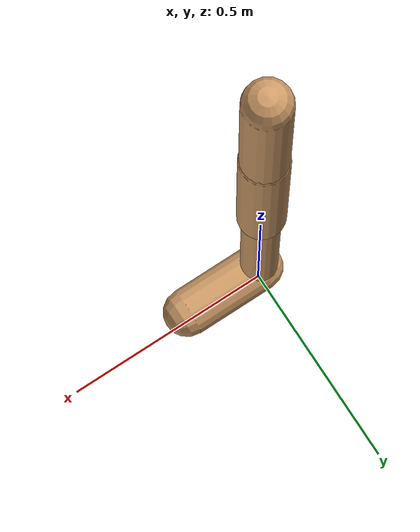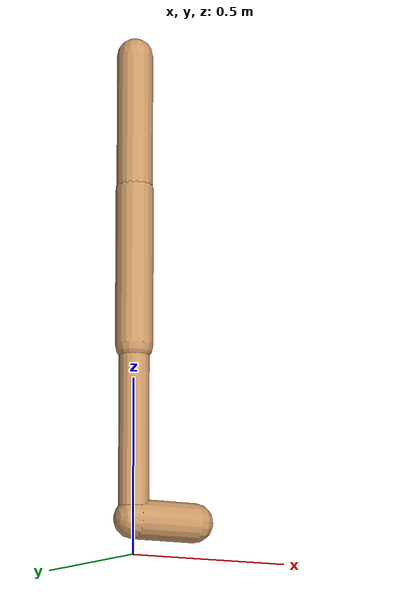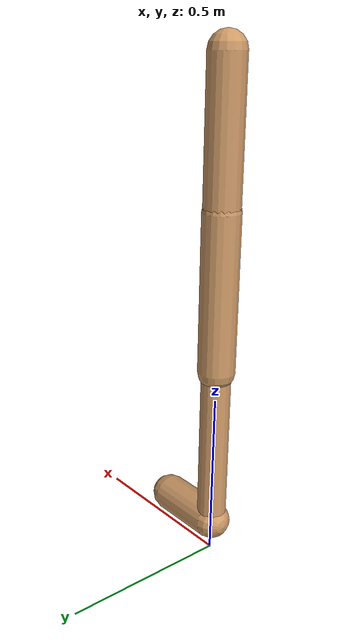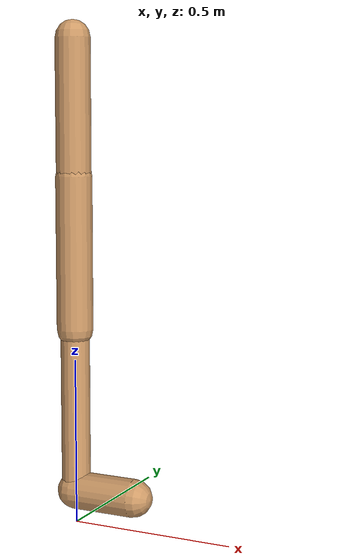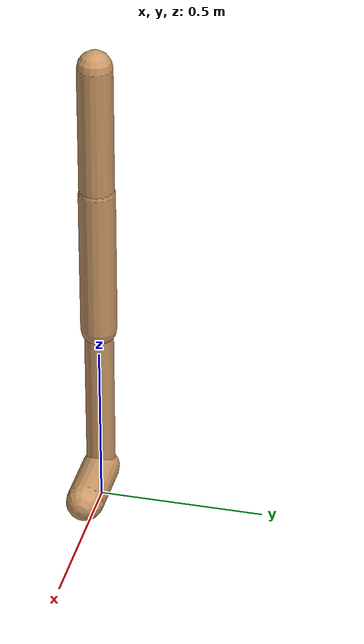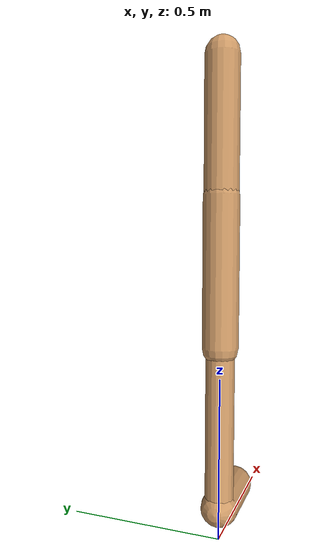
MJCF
<mujoco model="walker2d">
  <compiler angle="degree" coordinate="global" inertiafromgeom="true" />
  <default>
    <joint armature="0.01" damping=".1" limited="true" />
    <geom conaffinity="0" condim="3" contype="1" density="1000" friction="0.8 .1 .1" rgba="0.8 0.6 .4 1" />
  </default>
  <option integrator="RK4" timestep="0.002" />
  <worldbody>

    <body name="torso" pos="0 0 0.010774866052814242">
      <joint armature="0" axis="1 0 0" damping="0" limited="false" name="ignorex" pos="0 0 0" stiffness="0" type="slide" />
      <joint armature="0" axis="0 0 1" damping="0" limited="false" name="ignorez" pos="0 0 0" ref="1.25" stiffness="0" type="slide" />
      <joint armature="0" axis="0 1 0" damping="0" limited="false" name="ignorey" pos="0 0 0" stiffness="0" type="hinge" />
      <geom fromto="0 0 1.45 0 0 1.05" name="torso_geom" size="0.05213160114583485" type="capsule" />
      <body name="thigh">
        <joint axis="0 -1 0" name="thigh_joint" pos="0 0 1.05" range="-150 0" type="hinge" />
        <geom fromto="0.0 0.0 1.05 0.0 0.0 0.5948961160802458" name="thigh_geom" size="0.05441068076096072" type="capsule" />
        <body name="leg" pos="0.0 0.0 -0.0051038839197541375">
          <joint axis="0 -1 0" name="leg_joint" pos="0 0 0.6" range="-150 0" type="hinge" />
          <geom fromto="0.0 0.0 0.6 0.0 0.0 0.09432901786693988" name="leg_geom" size="0.04352854460876857" type="capsule" />
          <body name="foot" pos="0.0 0.0 -0.0056709821330601234">
            <joint axis="0 -1 0" name="foot_joint" pos="0 0 0.1" range="-45 45" type="hinge" />
            <geom fromto="0.0 0.0 0.1 0.19424775572417335 0.0 0.1" name="foot_geom" size="0.05673922653289663" type="capsule" />
          </body>
        </body>
      </body>

      <body name="thigh_left">
        <joint axis="0 -1 0" name="thigh_left_joint" pos="0 0 1.05" range="-150 0" type="hinge" />
        <geom fromto="0.0 0.0 1.05 0.0 0.0 0.5948961160802458" name="thigh_left_geom" rgba=".7 .3 .6 1" size="0.05441068076096072" type="capsule" />
        <body name="leg_left" pos="0.0 0.0 -0.0051038839197541375">
          <joint axis="0 -1 0" name="leg_left_joint" pos="0 0 0.6" range="-150 0" type="hinge" />
          <geom fromto="0.0 0.0 0.6 0.0 0.0 0.09432901786693988" name="leg_left_geom" rgba=".7 .3 .6 1" size="0.04352854460876857" type="capsule" />
          <body name="foot_left" pos="0.0 0.0 -0.0056709821330601234">
            <joint axis="0 -1 0" name="foot_left_joint" pos="0 0 0.1" range="-45 45" type="hinge" />
            <geom fromto="0.0 0.0 0.1 0.19424775572417335 0.0 0.1" name="foot_left_geom" rgba=".7 .3 .6 1" size="0.05673922653289663" type="capsule" />
          </body>
        </body>
      </body>
    </body>
  </worldbody>
  <actuator>

    <motor ctrllimited="true" ctrlrange="-1.0 1.0" gear="100" joint="thigh_joint" />
    <motor ctrllimited="true" ctrlrange="-1.0 1.0" gear="100" joint="leg_joint" />
    <motor ctrllimited="true" ctrlrange="-1.0 1.0" gear="100" joint="foot_joint" />
    <motor ctrllimited="true" ctrlrange="-1.0 1.0" gear="100" joint="thigh_left_joint" />
    <motor ctrllimited="true" ctrlrange="-1.0 1.0" gear="100" joint="leg_left_joint" />
    <motor ctrllimited="true" ctrlrange="-1.0 1.0" gear="100" joint="foot_left_joint" />

  </actuator>
</mujoco>
